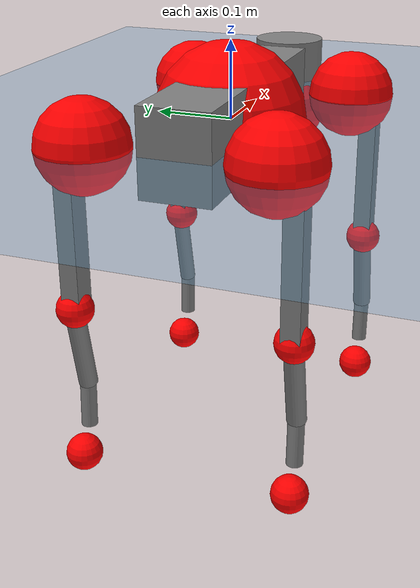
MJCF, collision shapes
<mujoco model="go2">
  <compiler angle="radian" assetdir="assets" balanceinertia="true" inertiafromgeom="false"/>

  <option timestep="0.005" density="1.2" viscosity="2e-05"/>

  <size nkey="1"/>

  <visual>
    <quality shadowsize="8192"/>
    <map shadowclip="0.5"/>
  </visual>

  <default>
    <default class="/">
      <geom contype="0" conaffinity="0" group="1" solref="-1000 -80"/>
      <site size="0.01 0.005 0.005" group="5"/>
      <general forcelimited="true" biastype="affine" gainprm="20" biasprm="0 -20 -0.5"/>
      <default class="go2">
        <joint armature="0.01" damping="0.01" frictionloss="0.2"/>
        <geom condim="1" margin="0.001"/>
        <default class="visual">
          <geom type="mesh" group="2"/>
        </default>
        <default class="collision">
          <geom group="3"/>
          <default class="foot">
            <geom size="0.022 0 0" condim="6" priority="1" friction="0.8 0.02 0.01" solimp="0.015 1 0.022"/>
          </default>
        </default>
        <default class="reward_collision_sphere">
          <geom group="5" rgba="1 0 0 1"/>
        </default>
      </default>
    </default>
  </default>

  <asset>
    <texture type="skybox" colorspace="auto" name="//unnamed_texture_0" builtin="gradient" rgb1="0.95 0.95 0.95" rgb2="0.95 0.95 0.95" width="100" height="600"/>
    <texture type="2d" colorspace="auto" name="texplane" builtin="checker" rgb1="0.345 0.575 0.748" rgb2="0.345 0.575 0.748" markrgb="1 1 1" width="512" height="512"/>
    <material name="MatPlane" class="/" texture="texplane" texuniform="true" texrepeat="2 2" specular="0.9"/>
    <material name="metal" class="/" rgba="0.9 0.95 0.95 1"/>
    <material name="black" class="/" rgba="0 0 0 1"/>
    <material name="white" class="/"/>
    <material name="gray" class="/" rgba="0.671705 0.692426 0.77427 1"/>
    <mesh name="base_0" class="/" file="base_0.obj"/>
    <mesh name="base_1" class="/" file="base_1.obj"/>
    <mesh name="base_2" class="/" file="base_2.obj"/>
    <mesh name="base_3" class="/" file="base_3.obj"/>
    <mesh name="base_4" class="/" file="base_4.obj"/>
    <mesh name="hip_0" class="/" file="hip_0.obj"/>
    <mesh name="hip_1" class="/" file="hip_1.obj"/>
    <mesh name="thigh_0" class="/" file="thigh_0.obj"/>
    <mesh name="thigh_1" class="/" file="thigh_1.obj"/>
    <mesh name="thigh_mirror_0" class="/" file="thigh_mirror_0.obj"/>
    <mesh name="thigh_mirror_1" class="/" file="thigh_mirror_1.obj"/>
    <mesh name="calf_0" class="/" file="calf_0.obj"/>
    <mesh name="calf_1" class="/" file="calf_1.obj"/>
    <mesh name="calf_mirror_0" class="/" file="calf_mirror_0.obj"/>
    <mesh name="calf_mirror_1" class="/" file="calf_mirror_1.obj"/>
    <mesh name="foot" class="/" file="foot.obj"/>
  </asset>

  <worldbody>
    <geom name="floor" class="/" size="100 100 0.125" type="plane" group="0" material="MatPlane"/>
    <light name="toplight_shadow" class="/" pos="0 0 5" dir="0.0990148 0.0990148 -0.990148" type="directional" ambient="0.04 0.04 0.04" diffuse="0.55 0.55 0.55" specular="0.12 0.12 0.12"/>
    <light name="toplight_fill" class="/" pos="0 0 5" dir="0.0990148 0.0990148 -0.990148" type="directional" castshadow="false" ambient="0.04 0.04 0.04" diffuse="0.3 0.3 0.3" specular="0.08 0.08 0.08"/>
    <body name="trunk" childclass="go2" pos="-0.00211516 0.000459364 0.00263532" quat="0.999999 -0.000748437 0.00116214 -4.47372e-05">
      <inertial pos="0.0209392 -0.000678035 -0.00822278" quat="-0.000559185 0.710531 -0.00957225 0.703601" mass="6.29932" diaginertia="0.0668743 0.107842 0.0239242"/>
      <joint name="//unnamed_joint_0" type="free" armature="0" damping="0" frictionloss="0"/>
      <geom name="//unnamed_geom_1" class="visual" material="black" mesh="base_0"/>
      <geom name="//unnamed_geom_2" class="visual" material="black" mesh="base_1"/>
      <geom name="//unnamed_geom_3" class="visual" material="black" mesh="base_2"/>
      <geom name="//unnamed_geom_4" class="visual" material="white" mesh="base_3"/>
      <geom name="//unnamed_geom_5" class="visual" material="gray" mesh="base_4"/>
      <geom name="trunk_1" class="collision" size="0.183291 0.0455549 0.0555428" type="box"/>
      <geom name="trunk_2" class="collision" size="0.0487218 0.0438496" pos="0.259649 0 0.0099369" type="cylinder"/>
      <geom name="trunk_3" class="collision" size="0.0457985" pos="0.266937 0 -0.0596214"/>
      <geom name="//unnamed_geom_9" class="reward_collision_sphere" size="0.0974436"/>
      <geom name="//unnamed_geom_10" class="reward_collision_sphere" size="0.0584661" pos="0.255093 0 -0.044716"/>
      <site name="imu" pos="-0.0248667 0.0014527 0.0434193" size="0.00974436"/>
      <camera name="track" pos="0 -2.03714 0" quat="0.707107 0.707107 0 0" mode="trackcom"/>
      <camera name="ego_camera" pos="0.284247 0 0.044716" quat="-0.5 -0.5 0.5 0.5"/>
      <body name="FL_hip" pos="0.174399 0.0462948 -0.00145797" quat="1 -0.000147733 -0.000213831 0.000220216">
        <inertial pos="-0.00503666 0.000514934 0.000466011" quat="0.498088 0.498695 0.505182 0.497999" mass="0.663073" diaginertia="0.000562335 0.000659248 0.000478366"/>
        <joint name="FL_hip_joint" pos="0 0 0" axis="0.999864 0.0154225 -0.00580456" range="-1.04398 1.10314" armature="0.00927715" damping="0.0203016" frictionloss="0.174532"/>
        <geom name="//unnamed_geom_11" class="visual" material="metal" mesh="hip_0"/>
        <geom name="//unnamed_geom_12" class="visual" material="gray" mesh="hip_1"/>
        <geom name="//unnamed_geom_13" class="collision" size="0.044824 0.0194887" pos="0 0.0814855 0" quat="0.707107 0.707107 0 0" type="cylinder"/>
        <geom name="//unnamed_geom_14" class="reward_collision_sphere" size="0.0584661" pos="0 0.0712999 0"/>
        <body name="FL_thigh" pos="-0.00300003 0.0962379 0.00234285" quat="1 5.04385e-06 9.29821e-06 -3.21877e-06">
          <inertial pos="-0.00455772 -0.0222046 -0.0298934" quat="0.83012 0.0780378 -0.0210378 0.551696" mass="1.04422" diaginertia="0.00373494 0.00652935 0.000880275"/>
          <joint name="FL_thigh_joint" pos="0 0 0" axis="0.00302755 0.999943 -0.0102231" stiffness="0.00258625" range="-1.56255 3.53323" armature="0.00869453" damping="0.0132165" frictionloss="0.170216"/>
          <geom name="//unnamed_geom_15" class="visual" material="metal" mesh="thigh_0"/>
          <geom name="//unnamed_geom_16" class="visual" material="gray" mesh="thigh_1"/>
          <geom name="//unnamed_geom_17" class="collision" size="0.103777 0.0119368 0.0165654" pos="0 0 -0.105828" quat="0.707107 0 0.707107 0" type="box"/>
          <body name="FL_calf" pos="-0.000925727 6.16694e-05 -0.213218" quat="1 -0.000451017 -0.000628307 0.000256862">
            <inertial pos="0.00621756 0.00115002 -0.142917" quat="0.712997 0.0041799 -0.00392717 0.701144" mass="0.219598" diaginertia="0.000911092 0.00157869 5.17405e-05"/>
            <joint name="FL_calf_joint" pos="0 0 0" axis="-0.00632037 0.99998 -0.000340459" range="-2.67923 -0.852306" armature="0.010908" damping="0.00144934" frictionloss="0.187989"/>
            <geom name="//unnamed_geom_18" class="visual" material="gray" mesh="calf_0"/>
            <geom name="//unnamed_geom_19" class="visual" material="black" mesh="calf_1"/>
            <geom name="FL_calf0" class="collision" size="0.0116932 0.0584661" pos="0.00728839 0 -0.0596214" quat="0.994493 0 -0.104807 0" type="cylinder"/>
            <geom name="//unnamed_geom_21" class="collision" size="0.0107188 0.0316692" pos="0.018221 0 -0.147066" quat="0.999688 0 0.0249974 0" type="cylinder"/>
            <geom name="//unnamed_geom_22" class="visual" pos="0 0 -0.211656" quat="1 0 0 0" material="black" mesh="foot"/>
            <geom name="FL_foot" class="foot" size="0.0170353" pos="-0.0018221 0 -0.211656"/>
            <geom name="//unnamed_geom_24" class="reward_collision_sphere" size="0.0243609"/>
            <geom name="//unnamed_geom_25" class="reward_collision_sphere" size="0.0243609" pos="-0.0018221 0 -0.211656"/>
            <site name="FL_foot" class="foot" pos="-0.0018221 0 -0.211656" size="0.00974436"/>
          </body>
        </body>
      </body>
      <body name="FR_hip" pos="0.176806 -0.0446103 -0.00199473" quat="1 -0.00035128 0.000423134 -0.000208791">
        <inertial pos="-0.00712216 0.000173961 -0.00250284" quat="0.50135 0.507871 0.495125 0.495547" mass="0.639123" diaginertia="0.000553531 0.000660346 0.000461943"/>
        <joint name="FR_hip_joint" pos="0 0 0" axis="0.99999 0.00302908 0.00329789" stiffness="0.0121007" range="-1.0263 1.05251" armature="0.00953207" damping="0.00431299" frictionloss="0.22127"/>
        <geom name="//unnamed_geom_26" class="visual" pos="0 2.1674e-10 9.29644e-09" quat="4.63268e-05 1 0 0" material="metal" mesh="hip_0"/>
        <geom name="//unnamed_geom_27" class="visual" pos="0 3.51362e-10 -2.29937e-08" quat="4.63268e-05 1 0 0" material="gray" mesh="hip_1"/>
        <geom name="//unnamed_geom_28" class="collision" size="0.044824 0.0194887" pos="0 -0.0814855 0" quat="0.707107 0.707107 0 0" type="cylinder"/>
        <geom name="//unnamed_geom_29" class="reward_collision_sphere" size="0.0584661" pos="0 -0.0712999 0"/>
        <body name="FR_thigh" pos="0.0026966 -0.0994977 0.000185982" quat="1 -6.72869e-05 1.48936e-05 -0.000267429">
          <inertial pos="-0.004043 0.0204067 -0.0349456" quat="0.546283 -0.0233054 0.0950857 0.83186" mass="1.0647" diaginertia="0.00356565 0.00622482 0.000833038"/>
          <joint name="FR_thigh_joint" pos="0 0 0" axis="0.00258347 -0.999955 -0.00913981" range="-3.43885 1.53589" armature="0.00877287" damping="0.0174556" frictionloss="0.222028"/>
          <geom name="//unnamed_geom_30" class="visual" material="metal" mesh="thigh_mirror_0"/>
          <geom name="//unnamed_geom_31" class="visual" material="gray" mesh="thigh_mirror_1"/>
          <geom name="//unnamed_geom_32" class="collision" size="0.103777 0.0119368 0.0165654" pos="0 0 -0.105828" quat="0.707107 0 0.707107 0" type="box"/>
          <body name="FR_calf" pos="-0.00274045 -0.000578766 -0.211388" quat="0.999999 0.000881064 0.000872833 -0.000104228">
            <inertial pos="0.00423732 0.000818999 -0.140347" quat="0.704787 -0.00538977 0.00629874 0.70937" mass="0.234016" diaginertia="0.00098344 0.00157473 5.23692e-05"/>
            <joint name="FR_calf_joint" pos="0 0 0" axis="-0.00248829 -0.999997 -0.00041968" range="0.848062 2.67101" armature="0.0103899" damping="0.00539548" frictionloss="0.221952"/>
            <geom name="//unnamed_geom_33" class="visual" material="gray" mesh="calf_mirror_0"/>
            <geom name="//unnamed_geom_34" class="visual" material="black" mesh="calf_mirror_1"/>
            <geom name="FR_calf0" class="collision" size="0.0126677 0.0584661" pos="0.00911048 0 -0.0596214" quat="0.995004 0 -0.0998334 0" type="cylinder"/>
            <geom name="//unnamed_geom_36" class="collision" size="0.0107188 0.0316692" pos="0.018221 0 -0.147066" quat="0.999688 0 0.0249974 0" type="cylinder"/>
            <geom name="//unnamed_geom_37" class="visual" pos="0 0 -0.211656" quat="1 0 0 0" material="black" mesh="foot"/>
            <geom name="FR_foot" class="foot" size="0.0213285" pos="-0.0018221 0 -0.211656"/>
            <geom name="//unnamed_geom_39" class="reward_collision_sphere" size="0.0243609"/>
            <geom name="//unnamed_geom_40" class="reward_collision_sphere" size="0.0243609" pos="-0.0018221 0 -0.211656"/>
            <site name="FR_foot" class="foot" pos="-0.0018221 0 -0.211656" size="0.00974436"/>
          </body>
        </body>
      </body>
      <body name="RL_hip" pos="-0.175795 0.0453527 -8.94674e-05" quat="1 -0.000496777 -0.000194108 0.00049703">
        <inertial pos="0.00454059 0.00427344 0.00206245" quat="0.510607 0.496046 0.495794 0.497401" mass="0.624713" diaginertia="0.000536567 0.000634377 0.000446392"/>
        <joint name="RL_hip_joint" pos="0 0 0" axis="-0.999999 0.000268659 -0.00164855" range="-1.03524 1.0959" armature="0.00979071" damping="0.0117443" frictionloss="0.197556"/>
        <geom name="//unnamed_geom_41" class="visual" pos="7.19939e-10 0 1.41125e-07" quat="4.63268e-05 0 1 0" material="metal" mesh="hip_0"/>
        <geom name="//unnamed_geom_42" class="visual" pos="1.16711e-09 0 1.25157e-07" quat="4.63268e-05 0 1 0" material="gray" mesh="hip_1"/>
        <geom name="//unnamed_geom_43" class="collision" size="0.044824 0.0194887" pos="0 0.0814855 0" quat="0.707107 0.707107 0 0" type="cylinder"/>
        <geom name="//unnamed_geom_44" class="reward_collision_sphere" size="0.0584661" pos="0 0.0712999 0"/>
        <body name="RL_thigh" pos="-8.91284e-05 0.0939691 0.00160783" quat="0.999999 0.000105213 0.00101467 0.000886902">
          <inertial pos="-0.00156376 -0.0197671 -0.0316936" quat="0.829605 0.0825766 -0.0185763 0.551898" mass="1.0048" diaginertia="0.00370876 0.00640204 0.000859315"/>
          <joint name="RL_thigh_joint" pos="0 0 0" axis="-0.010211 0.999946 0.00181694" range="-0.575578 4.49632" armature="0.0104623" damping="0.000771145" frictionloss="0.191136"/>
          <geom name="//unnamed_geom_45" class="visual" material="metal" mesh="thigh_0"/>
          <geom name="//unnamed_geom_46" class="visual" material="gray" mesh="thigh_1"/>
          <geom name="//unnamed_geom_47" class="collision" size="0.103777 0.0119368 0.0165654" pos="0 0 -0.105828" quat="0.707107 0 0.707107 0" type="box"/>
          <body name="RL_calf" pos="-0.0023754 0.00145343 -0.214642" quat="1 0.000230782 0.000295127 4.10921e-05">
            <inertial pos="0.0083077 -0.000334622 -0.143167" quat="0.710112 0.0130267 -0.00457565 0.703953" mass="0.217112" diaginertia="0.000889165 0.0015763 5.17798e-05"/>
            <joint name="RL_calf_joint" pos="0 0 0" axis="0.00231112 0.999987 -0.00463704" stiffness="0.0118594" range="-2.71116 -0.873756" armature="0.00955884" damping="0.00604911" frictionloss="0.185849"/>
            <geom name="//unnamed_geom_48" class="visual" material="gray" mesh="calf_0"/>
            <geom name="//unnamed_geom_49" class="visual" material="black" mesh="calf_1"/>
            <geom name="RL_calf0" class="collision" size="0.0126677 0.0584661" pos="0.00911048 0 -0.0596214" quat="0.995004 0 -0.0998334 0" type="cylinder"/>
            <geom name="//unnamed_geom_51" class="collision" size="0.0107188 0.0316692" pos="0.018221 0 -0.147066" quat="0.999688 0 0.0249974 0" type="cylinder"/>
            <geom name="//unnamed_geom_52" class="visual" pos="0 0 -0.211656" quat="1 0 0 0" material="black" mesh="foot"/>
            <geom name="RL_foot" class="foot" size="0.019924" pos="-0.0018221 0 -0.211656"/>
            <geom name="//unnamed_geom_54" class="reward_collision_sphere" size="0.0243609"/>
            <geom name="//unnamed_geom_55" class="reward_collision_sphere" size="0.0243609" pos="-0.0018221 0 -0.211656"/>
            <site name="RL_foot" class="foot" pos="-0.0018221 0 -0.211656" size="0.00974436"/>
          </body>
        </body>
      </body>
      <body name="RR_hip" pos="-0.177977 -0.0474021 0.00348167" quat="1 -0.000231552 0.000402944 0.000160545">
        <inertial pos="0.00250014 0.000727462 0.000541018" quat="0.506685 0.499 0.495178 0.499067" mass="0.646825" diaginertia="0.000568962 0.000660082 0.000471605"/>
        <joint name="RR_hip_joint" pos="0 0 0" axis="-1 0.000488916 -0.000662571" range="-1.05158 1.10143" armature="0.00836673" damping="0" frictionloss="0.192961"/>
        <geom name="//unnamed_geom_56" class="visual" pos="-7.16217e-10 2.1674e-10 1.31828e-07" quat="2.14617e-09 4.63268e-05 4.63268e-05 -1" material="metal" mesh="hip_0"/>
        <geom name="//unnamed_geom_57" class="visual" pos="-1.17631e-09 3.51362e-10 1.48151e-07" quat="2.14617e-09 4.63268e-05 4.63268e-05 -1" material="gray" mesh="hip_1"/>
        <geom name="//unnamed_geom_58" class="collision" size="0.044824 0.0194887" pos="0 -0.0814855 0" quat="0.707107 0.707107 0 0" type="cylinder"/>
        <geom name="//unnamed_geom_59" class="reward_collision_sphere" size="0.0584661" pos="0 -0.0712999 0"/>
        <body name="RR_thigh" pos="-0.000928506 -0.0952382 0.000557147" quat="1 0.000129274 8.08684e-05 0.000118653">
          <inertial pos="-0.00403498 0.0252569 -0.0305118" quat="0.552363 -0.0192914 0.086793 0.828849" mass="1.01512" diaginertia="0.00355887 0.00624689 0.000822093"/>
          <joint name="RR_thigh_joint" pos="0 0 0" axis="0.0058028 -0.999955 0.00749871" range="-4.48854 0.475121" armature="0.00916874" damping="0.0230237" frictionloss="0.194522"/>
          <geom name="//unnamed_geom_60" class="visual" material="metal" mesh="thigh_mirror_0"/>
          <geom name="//unnamed_geom_61" class="visual" material="gray" mesh="thigh_mirror_1"/>
          <geom name="//unnamed_geom_62" class="collision" size="0.103777 0.0119368 0.0165654" pos="0 0 -0.105828" quat="0.707107 0 0.707107 0" type="box"/>
          <body name="RR_calf" pos="0.00317346 9.95647e-06 -0.214122" quat="1 -0.000167934 5.95444e-05 0.000126732">
            <inertial pos="0.00671656 -0.00201224 -0.138509" quat="0.701274 0.00136634 -0.00119291 0.71289" mass="0.220251" diaginertia="0.000913932 0.0016023 5.00245e-05"/>
            <joint name="RR_calf_joint" pos="0 0 0" axis="-0.0154364 -0.999874 -0.00378261" stiffness="0.0035395" range="0.847321 2.72445" armature="0.00971216" damping="0.00596747" frictionloss="0.221728"/>
            <geom name="//unnamed_geom_63" class="visual" material="gray" mesh="calf_mirror_0"/>
            <geom name="//unnamed_geom_64" class="visual" material="black" mesh="calf_mirror_1"/>
            <geom name="RR_calf0" class="collision" size="0.0126677 0.0584661" pos="0.00911048 0 -0.0596214" quat="0.995004 0 -0.0998334 0" type="cylinder"/>
            <geom name="//unnamed_geom_66" class="collision" size="0.0107188 0.0316692" pos="0.018221 0 -0.147066" quat="0.999688 0 0.0249974 0" type="cylinder"/>
            <geom name="//unnamed_geom_67" class="visual" pos="0 0 -0.211656" quat="1 0 0 0" material="black" mesh="foot"/>
            <geom name="RR_foot" class="foot" size="0.0202173" pos="-0.0018221 0 -0.211656"/>
            <geom name="//unnamed_geom_69" class="reward_collision_sphere" size="0.0243609"/>
            <geom name="//unnamed_geom_70" class="reward_collision_sphere" size="0.0243609" pos="-0.0018221 0 -0.211656"/>
            <site name="RR_foot" class="foot" pos="-0.0018221 0 -0.211656" size="0.00974436"/>
          </body>
        </body>
      </body>
    </body>
  </worldbody>

  <contact>
    <pair class="/" geom1="floor" geom2="FL_foot" name="//unnamed_contact_0"/>
    <pair class="/" geom1="floor" geom2="FR_foot" name="//unnamed_contact_1"/>
    <pair class="/" geom1="floor" geom2="RL_foot" name="//unnamed_contact_2"/>
    <pair class="/" geom1="floor" geom2="RR_foot" name="//unnamed_contact_3"/>
  </contact>

  <actuator>
    <general name="FL_hip" class="/" joint="FL_hip_joint" forcerange="-21.8985 21.8985" gainprm="18.3291" biasprm="0 -18.3291 -0.456567"/>
    <general name="FL_thigh" class="/" joint="FL_thigh_joint" forcerange="-23.7208 23.7208" gainprm="18.3291" biasprm="0 -18.3291 -0.456567"/>
    <general name="FL_calf" class="/" joint="FL_calf_joint" forcerange="-39.7839 39.7839" gainprm="18.3291" biasprm="0 -18.3291 -0.456567"/>
    <general name="FR_hip" class="/" joint="FR_hip_joint" forcerange="-22.2183 22.2183" gainprm="18.3291" biasprm="0 -18.3291 -0.456567"/>
    <general name="FR_thigh" class="/" joint="FR_thigh_joint" forcerange="-24.6925 24.6925" gainprm="18.3291" biasprm="0 -18.3291 -0.456567"/>
    <general name="FR_calf" class="/" joint="FR_calf_joint" forcerange="-41.6448 41.6448" gainprm="18.3291" biasprm="0 -18.3291 -0.456567"/>
    <general name="RL_hip" class="/" joint="RL_hip_joint" forcerange="-23.1633 23.1633" gainprm="18.3291" biasprm="0 -18.3291 -0.456567"/>
    <general name="RL_thigh" class="/" joint="RL_thigh_joint" forcerange="-21.6572 21.6572" gainprm="18.3291" biasprm="0 -18.3291 -0.456567"/>
    <general name="RL_calf" class="/" joint="RL_calf_joint" forcerange="-48.6557 48.6557" gainprm="18.3291" biasprm="0 -18.3291 -0.456567"/>
    <general name="RR_hip" class="/" joint="RR_hip_joint" forcerange="-22.5836 22.5836" gainprm="18.3291" biasprm="0 -18.3291 -0.456567"/>
    <general name="RR_thigh" class="/" joint="RR_thigh_joint" forcerange="-23.5885 23.5885" gainprm="18.3291" biasprm="0 -18.3291 -0.456567"/>
    <general name="RR_calf" class="/" joint="RR_calf_joint" forcerange="-47.8829 47.8829" gainprm="18.3291" biasprm="0 -18.3291 -0.456567"/>
  </actuator>

  <sensor>
    <gyro site="imu" name="imu_angular_velocity"/>
    <velocimeter site="imu" name="imu_linear_velocity"/>
    <framelinvel objtype="site" objname="FL_foot" name="FL_foot_global_linear_velocity"/>
    <framelinvel objtype="site" objname="FR_foot" name="FR_foot_global_linear_velocity"/>
    <framelinvel objtype="site" objname="RL_foot" name="RL_foot_global_linear_velocity"/>
    <framelinvel objtype="site" objname="RR_foot" name="RR_foot_global_linear_velocity"/>
  </sensor>

  <keyframe>
    <key name="home" qpos="0 0 0.325 1 0 0 0 0.1 0.8 -1.5 -0.1 -0.8 1.5 -0.1 0.8 -1.5 0.1 -0.8 1.5"/>
  </keyframe>
</mujoco>
